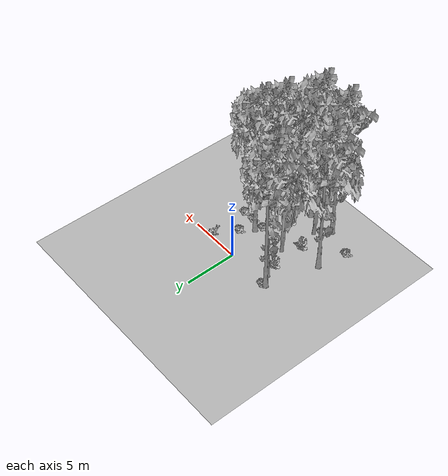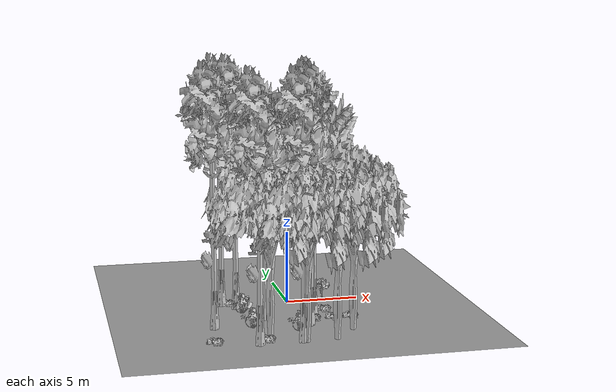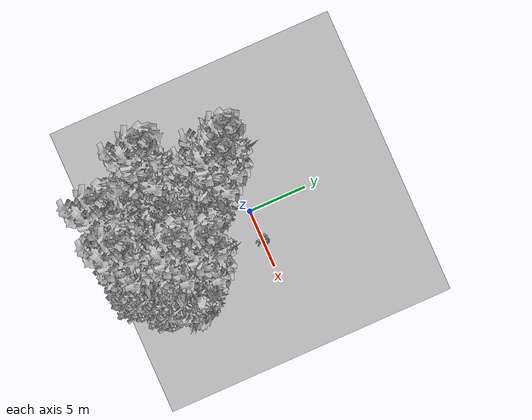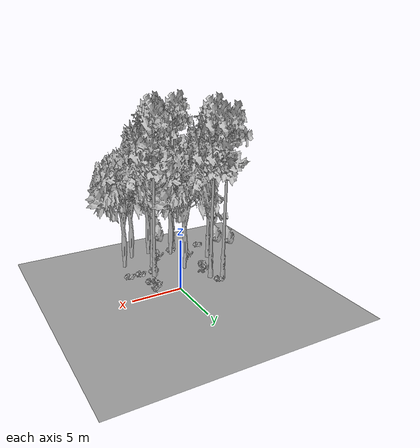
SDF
<sdf version="1.7">
 <world name="default">
  <model name="ground_plane">
   <static>1</static>
   <link name="link">
    <collision name="collision">
     <pose>-50 0 0 0 -0 0</pose>
     <geometry><plane><normal>0 0 1</normal><size>80 80</size></plane></geometry>
     <surface><contact><ode><min_depth>0.01</min_depth><max_vel>0</max_vel></ode></contact></surface>
    </collision>
    <visual name="grass">
     <cast_shadows>0</cast_shadows>
     <geometry>
      <mesh>
       <scale>0.46714285714285714 0.46714285714285714 0.1</scale>
       <uri>file://grass_plane/meshes/grass_plane.dae</uri>
      </mesh>
     </geometry>
    </visual>
   </link>
  </model>
  <model name="Tree 59">
   <static>1</static>
   <pose>0.3815728034849144 -5.485817286889414 0 1.57079 -0 0</pose>
   <link name="link">
    <collision name="collision">
     <geometry><mesh><scale>3.5 5 3.5</scale><uri>model://tree_9/meshes/tree_9.obj</uri></mesh></geometry>
    </collision>
    <visual name="visual">
     <geometry><mesh><scale>3.5 5 3.5</scale><uri>model://tree_9/meshes/tree_9.obj</uri></mesh></geometry>
    </visual>
   </link>
  </model>
  <model name="Tree 62">
   <static>1</static>
   <pose>1.301633378387983 -8.611817116451572 0 1.57079 -0 0</pose>
   <link name="link">
    <collision name="collision">
     <geometry><mesh><scale>3.5 5 3.5</scale><uri>model://tree_2/meshes/tree_2.obj</uri></mesh></geometry>
    </collision>
    <visual name="visual">
     <geometry><mesh><scale>3.5 5 3.5</scale><uri>model://tree_2/meshes/tree_2.obj</uri></mesh></geometry>
    </visual>
   </link>
  </model>
  <model name="Tree 118">
   <static>1</static>
   <pose>-4.614556200472634 0.11398063820908533 0 1.57079 -0 0</pose>
   <link name="link">
    <collision name="collision">
     <geometry><mesh><scale>3.5 5 3.5</scale><uri>model://tree_9/meshes/tree_9.obj</uri></mesh></geometry>
    </collision>
    <visual name="visual">
     <geometry><mesh><scale>3.5 5 3.5</scale><uri>model://tree_9/meshes/tree_9.obj</uri></mesh></geometry>
    </visual>
   </link>
  </model>
  <model name="Tree 228">
   <static>1</static>
   <pose>-2.803156852792469 -7.448028382975458 0 1.57079 -0 0</pose>
   <link name="link">
    <collision name="collision">
     <geometry><mesh><scale>3.5 5 3.5</scale><uri>model://tree_2/meshes/tree_2.obj</uri></mesh></geometry>
    </collision>
    <visual name="visual">
     <geometry><mesh><scale>3.5 5 3.5</scale><uri>model://tree_2/meshes/tree_2.obj</uri></mesh></geometry>
    </visual>
   </link>
  </model>
  <model name="Tree 327">
   <static>1</static>
   <pose>-0.8584819957872583 -8.728562652128666 0 1.57079 -0 0</pose>
   <link name="link">
    <collision name="collision">
     <geometry><mesh><scale>3.5 5 3.5</scale><uri>model://tree_9/meshes/tree_9.obj</uri></mesh></geometry>
    </collision>
    <visual name="visual">
     <geometry><mesh><scale>3.5 5 3.5</scale><uri>model://tree_9/meshes/tree_9.obj</uri></mesh></geometry>
    </visual>
   </link>
  </model>
  <model name="Tree 338">
   <static>1</static>
   <pose>-2.53687597432382 -3.7578625933582828 0 1.57079 -0 0</pose>
   <link name="link">
    <collision name="collision">
     <geometry><mesh><scale>3.5 5 3.5</scale><uri>model://tree_2/meshes/tree_2.obj</uri></mesh></geometry>
    </collision>
    <visual name="visual">
     <geometry><mesh><scale>3.5 5 3.5</scale><uri>model://tree_2/meshes/tree_2.obj</uri></mesh></geometry>
    </visual>
   </link>
  </model>
  <model name="Tree 411">
   <static>1</static>
   <pose>2.794138678514038 -6.90719435451912 0 1.57079 -0 0</pose>
   <link name="link">
    <collision name="collision">
     <geometry><mesh><scale>3.5 5 3.5</scale><uri>model://tree_2/meshes/tree_2.obj</uri></mesh></geometry>
    </collision>
    <visual name="visual">
     <geometry><mesh><scale>3.5 5 3.5</scale><uri>model://tree_2/meshes/tree_2.obj</uri></mesh></geometry>
    </visual>
   </link>
  </model>
  <model name="Tree 429">
   <static>1</static>
   <pose>-3.657475208943758 -8.76437980940624 0 1.57079 -0 0</pose>
   <link name="link">
    <collision name="collision">
     <geometry><mesh><scale>3.5 5 3.5</scale><uri>model://tree_9/meshes/tree_9.obj</uri></mesh></geometry>
    </collision>
    <visual name="visual">
     <geometry><mesh><scale>3.5 5 3.5</scale><uri>model://tree_9/meshes/tree_9.obj</uri></mesh></geometry>
    </visual>
   </link>
  </model>
  <model name="Tree 436">
   <static>1</static>
   <pose>-5.923808932133056 -4.952996707856897 0 1.57079 -0 0</pose>
   <link name="link">
    <collision name="collision">
     <geometry><mesh><scale>3.5 5 3.5</scale><uri>model://tree_9/meshes/tree_9.obj</uri></mesh></geometry>
    </collision>
    <visual name="visual">
     <geometry><mesh><scale>3.5 5 3.5</scale><uri>model://tree_9/meshes/tree_9.obj</uri></mesh></geometry>
    </visual>
   </link>
  </model>
  <model name="Tree 511">
   <static>1</static>
   <pose>-3.7796513421328157 -0.7959137961114635 0 1.57079 -0 0</pose>
   <link name="link">
    <collision name="collision">
     <geometry><mesh><scale>3.5 5 3.5</scale><uri>model://tree_9/meshes/tree_9.obj</uri></mesh></geometry>
    </collision>
    <visual name="visual">
     <geometry><mesh><scale>3.5 5 3.5</scale><uri>model://tree_9/meshes/tree_9.obj</uri></mesh></geometry>
    </visual>
   </link>
  </model>
  <model name="Tree 521">
   <static>1</static>
   <pose>1.0427007497611598 -3.5616796630516845 0 1.57079 -0 0</pose>
   <link name="link">
    <collision name="collision">
     <geometry><mesh><scale>3.5 5 3.5</scale><uri>model://tree_9/meshes/tree_9.obj</uri></mesh></geometry>
    </collision>
    <visual name="visual">
     <geometry><mesh><scale>3.5 5 3.5</scale><uri>model://tree_9/meshes/tree_9.obj</uri></mesh></geometry>
    </visual>
   </link>
  </model>
  <model name="Tree 592">
   <static>1</static>
   <pose>-0.7105356128094229 -8.747004632701938 0 1.57079 -0 0</pose>
   <link name="link">
    <collision name="collision">
     <geometry><mesh><scale>3.5 5 3.5</scale><uri>model://tree_2/meshes/tree_2.obj</uri></mesh></geometry>
    </collision>
    <visual name="visual">
     <geometry><mesh><scale>3.5 5 3.5</scale><uri>model://tree_2/meshes/tree_2.obj</uri></mesh></geometry>
    </visual>
   </link>
  </model>
  <model name="Bush 26">
   <static>1</static>
   <pose>0.8012423602010799 -4.364073209864621 0 1.57079 -0 0</pose>
   <link name="link">
    <collision name="collision">
     <geometry><mesh><scale>2 2 2</scale><uri>model://bush_2/meshes/bush_2.obj</uri></mesh></geometry>
     <surface><contact><collide_without_contact>false</collide_without_contact></contact></surface>
    </collision>
    <visual name="visual">
     <geometry><mesh><scale>2 2 2</scale><uri>model://bush_2/meshes/bush_2.obj</uri></mesh></geometry>
    </visual>
   </link>
  </model>
  <model name="Bush 29">
   <static>1</static>
   <pose>-0.5765915014747307 -6.499365942213899 0 1.57079 -0 0</pose>
   <link name="link">
    <collision name="collision">
     <geometry><mesh><scale>2 2 2</scale><uri>model://bush_4/meshes/bush_4.obj</uri></mesh></geometry>
     <surface><contact><collide_without_contact>false</collide_without_contact></contact></surface>
    </collision>
    <visual name="visual">
     <geometry><mesh><scale>2 2 2</scale><uri>model://bush_4/meshes/bush_4.obj</uri></mesh></geometry>
    </visual>
   </link>
  </model>
  <model name="Bush 38">
   <static>1</static>
   <pose>2.5657177457091294 0.19345906775551214 0 1.57079 -0 0</pose>
   <link name="link">
    <collision name="collision">
     <geometry><mesh><scale>2 2 2</scale><uri>model://bush_5/meshes/bush_5.obj</uri></mesh></geometry>
     <surface><contact><collide_without_contact>false</collide_without_contact></contact></surface>
    </collision>
    <visual name="visual">
     <geometry><mesh><scale>2 2 2</scale><uri>model://bush_5/meshes/bush_5.obj</uri></mesh></geometry>
    </visual>
   </link>
  </model>
  <model name="Bush 77">
   <static>1</static>
   <pose>1.9698363520730808 -2.504273257207039 0 1.57079 -0 0</pose>
   <link name="link">
    <collision name="collision">
     <geometry><mesh><scale>2 2 2</scale><uri>model://bush_2/meshes/bush_2.obj</uri></mesh></geometry>
     <surface><contact><collide_without_contact>false</collide_without_contact></contact></surface>
    </collision>
    <visual name="visual">
     <geometry><mesh><scale>2 2 2</scale><uri>model://bush_2/meshes/bush_2.obj</uri></mesh></geometry>
    </visual>
   </link>
  </model>
  <model name="Bush 121">
   <static>1</static>
   <pose>3.3907578678845525 -4.3749403581629664 0 1.57079 -0 0</pose>
   <link name="link">
    <collision name="collision">
     <geometry><mesh><scale>2 2 2</scale><uri>model://bush_2/meshes/bush_2.obj</uri></mesh></geometry>
     <surface><contact><collide_without_contact>false</collide_without_contact></contact></surface>
    </collision>
    <visual name="visual">
     <geometry><mesh><scale>2 2 2</scale><uri>model://bush_2/meshes/bush_2.obj</uri></mesh></geometry>
    </visual>
   </link>
  </model>
  <model name="Bush 140">
   <static>1</static>
   <pose>-3.45120044965482 -5.234385614113052 0 1.57079 -0 0</pose>
   <link name="link">
    <collision name="collision">
     <geometry><mesh><scale>2 2 2</scale><uri>model://bush_4/meshes/bush_4.obj</uri></mesh></geometry>
     <surface><contact><collide_without_contact>false</collide_without_contact></contact></surface>
    </collision>
    <visual name="visual">
     <geometry><mesh><scale>2 2 2</scale><uri>model://bush_4/meshes/bush_4.obj</uri></mesh></geometry>
    </visual>
   </link>
  </model>
  <model name="Bush 283">
   <static>1</static>
   <pose>-3.5510389490258945 -1.8965107496615659 0 1.57079 -0 0</pose>
   <link name="link">
    <collision name="collision">
     <geometry><mesh><scale>2 2 2</scale><uri>model://bush_4/meshes/bush_4.obj</uri></mesh></geometry>
     <surface><contact><collide_without_contact>false</collide_without_contact></contact></surface>
    </collision>
    <visual name="visual">
     <geometry><mesh><scale>2 2 2</scale><uri>model://bush_4/meshes/bush_4.obj</uri></mesh></geometry>
    </visual>
   </link>
  </model>
  <model name="Bush 347">
   <static>1</static>
   <pose>2.205849531967253 -4.397791542865534 0 1.57079 -0 0</pose>
   <link name="link">
    <collision name="collision">
     <geometry><mesh><scale>2 2 2</scale><uri>model://bush_2/meshes/bush_2.obj</uri></mesh></geometry>
     <surface><contact><collide_without_contact>false</collide_without_contact></contact></surface>
    </collision>
    <visual name="visual">
     <geometry><mesh><scale>2 2 2</scale><uri>model://bush_2/meshes/bush_2.obj</uri></mesh></geometry>
    </visual>
   </link>
  </model>
  <model name="Bush 412">
   <static>1</static>
   <pose>-6.382261767011784 -7.952197775716883 0 1.57079 -0 0</pose>
   <link name="link">
    <collision name="collision">
     <geometry><mesh><scale>2 2 2</scale><uri>model://bush_2/meshes/bush_2.obj</uri></mesh></geometry>
     <surface><contact><collide_without_contact>false</collide_without_contact></contact></surface>
    </collision>
    <visual name="visual">
     <geometry><mesh><scale>2 2 2</scale><uri>model://bush_2/meshes/bush_2.obj</uri></mesh></geometry>
    </visual>
   </link>
  </model>
  <model name="Bush 417">
   <static>1</static>
   <pose>-3.062055975262176 -8.094098839970883 0 1.57079 -0 0</pose>
   <link name="link">
    <collision name="collision">
     <geometry><mesh><scale>2 2 2</scale><uri>model://bush_2/meshes/bush_2.obj</uri></mesh></geometry>
     <surface><contact><collide_without_contact>false</collide_without_contact></contact></surface>
    </collision>
    <visual name="visual">
     <geometry><mesh><scale>2 2 2</scale><uri>model://bush_2/meshes/bush_2.obj</uri></mesh></geometry>
    </visual>
   </link>
  </model>
  <model name="Bush 633">
   <static>1</static>
   <pose>-4.2331342981512705 0.10515897095289262 0 1.57079 -0 0</pose>
   <link name="link">
    <collision name="collision">
     <geometry><mesh><scale>2 2 2</scale><uri>model://bush_2/meshes/bush_2.obj</uri></mesh></geometry>
     <surface><contact><collide_without_contact>false</collide_without_contact></contact></surface>
    </collision>
    <visual name="visual">
     <geometry><mesh><scale>2 2 2</scale><uri>model://bush_2/meshes/bush_2.obj</uri></mesh></geometry>
    </visual>
   </link>
  </model>
 </world>
</sdf>
